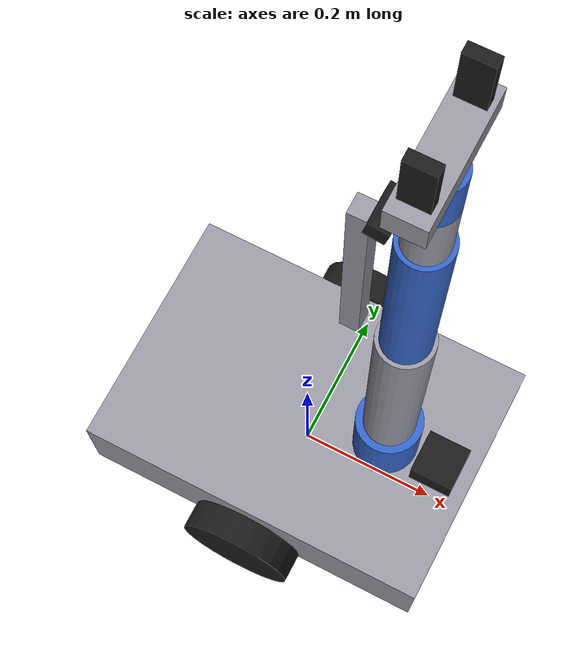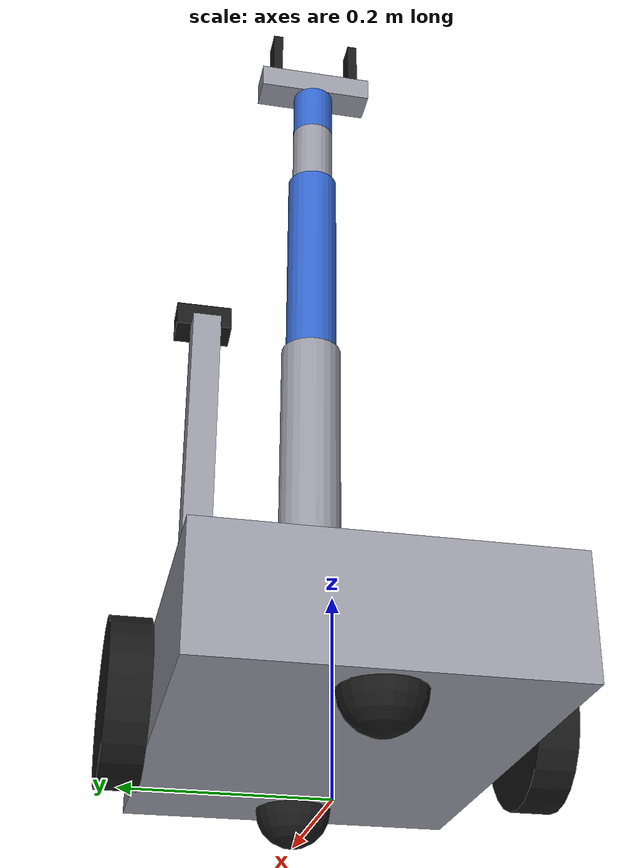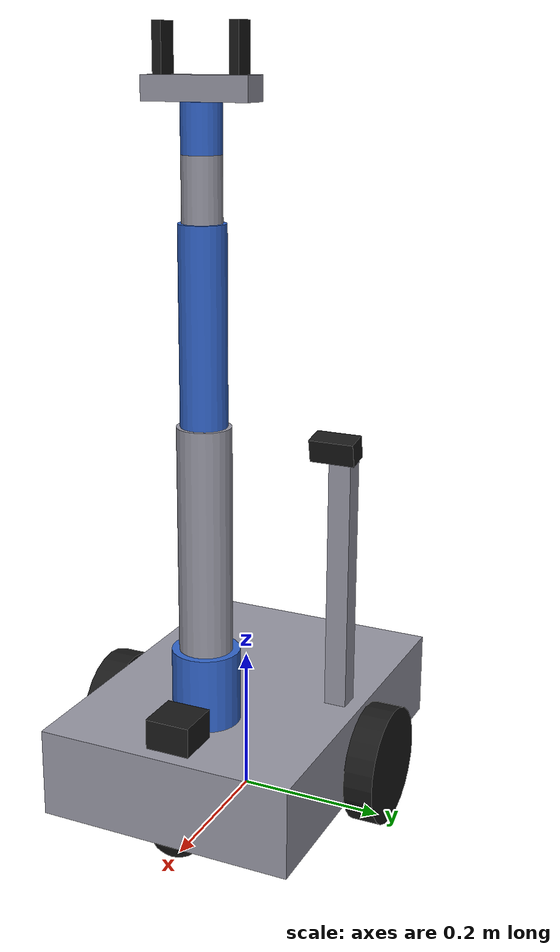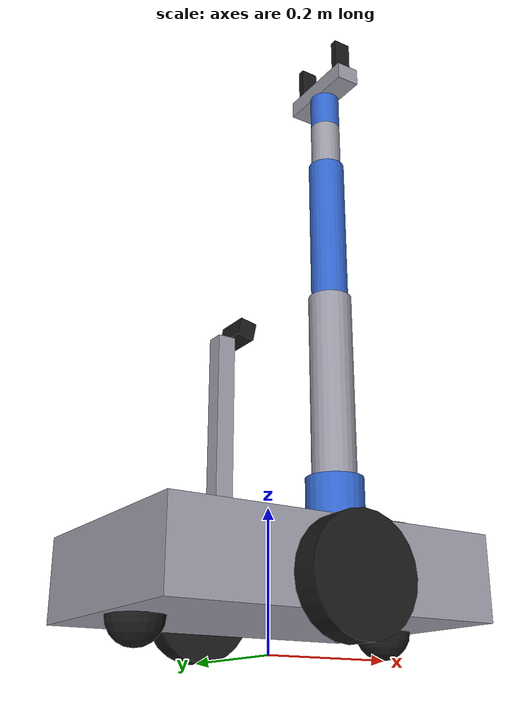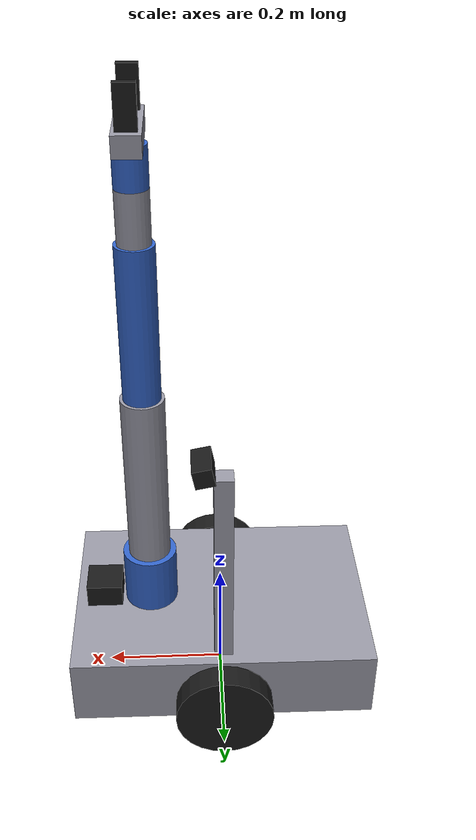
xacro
<?xml version="1.0"?>
<robot xmlns:xacro="http://www.ros.org/wiki/xacro" name="mm">
<material name="grey"><color rgba="0.6 0.6 0.65 1"/></material>
<material name="blue"><color rgba="0.2 0.4 0.8 1"/></material>
<material name="black"><color rgba="0.1 0.1 0.1 1"/></material>

<xacro:macro name="blk" params="name m x y z mat oz:=0">
<link name="${name}">
<visual><origin xyz="0 0 ${oz}"/><geometry><box size="${x} ${y} ${z}"/></geometry><material name="${mat}"/></visual>
<collision><origin xyz="0 0 ${oz}"/><geometry><box size="${x} ${y} ${z}"/></geometry></collision>
<inertial><origin xyz="0 0 ${oz}"/><mass value="${m}"/><inertia ixx="${m*(y*y+z*z)/12}" ixy="0" ixz="0" iyy="${m*(x*x+z*z)/12}" iyz="0" izz="${m*(x*x+y*y)/12}"/></inertial>
</link></xacro:macro>

<xacro:macro name="cyl" params="name m r h oz mat">
<link name="${name}">
<visual><origin xyz="0 0 ${oz}"/><geometry><cylinder radius="${r}" length="${h}"/></geometry><material name="${mat}"/></visual>
<collision><origin xyz="0 0 ${oz}"/><geometry><cylinder radius="${r}" length="${h}"/></geometry></collision>
<inertial><origin xyz="0 0 ${oz}"/><mass value="${m}"/><inertia ixx="${m*(3*r*r+h*h)/12}" ixy="0" ixz="0" iyy="${m*(3*r*r+h*h)/12}" iyz="0" izz="${m*r*r/2}"/></inertial>
</link></xacro:macro>

<xacro:macro name="fix" params="name parent child xyz rpy:='0 0 0'">
<joint name="${name}" type="fixed"><parent link="${parent}"/><child link="${child}"/><origin xyz="${xyz}" rpy="${rpy}"/></joint>
</xacro:macro>

<xacro:macro name="rev" params="name parent child xyz axis">
<joint name="${name}" type="revolute"><parent link="${parent}"/><child link="${child}"/><origin xyz="${xyz}"/><axis xyz="${axis}"/>
<limit lower="-2.6" upper="2.6" effort="100" velocity="2"/><dynamics damping="1.0" friction="0.1"/></joint>
</xacro:macro>

<xacro:macro name="wheel" params="side y">
<xacro:cyl name="${side}_wheel" m="0.5" r="0.08" h="0.04" oz="0" mat="black"/>
<joint name="${side}_wheel_joint" type="continuous"><parent link="base_link"/><child link="${side}_wheel"/><origin xyz="0 ${y} -0.02" rpy="-1.5708 0 0"/><axis xyz="0 0 1"/></joint>
<gazebo reference="${side}_wheel"><mu1>1.0</mu1><mu2>1.0</mu2></gazebo>
</xacro:macro>

<xacro:macro name="caster" params="name x">
<link name="${name}"><visual><geometry><sphere radius="0.04"/></geometry><material name="black"/></visual><collision><geometry><sphere radius="0.04"/></geometry></collision>
<inertial><mass value="0.1"/><inertia ixx="6.4e-5" ixy="0" ixz="0" iyy="6.4e-5" iyz="0" izz="6.4e-5"/></inertial></link>
<xacro:fix name="${name}_joint" parent="base_link" child="${name}" xyz="${x} 0 -0.06"/>
<gazebo reference="${name}"><mu1>0.0</mu1><mu2>0.0</mu2></gazebo>
</xacro:macro>

<xacro:macro name="jif" params="n"><joint name="${n}"><command_interface name="position"/><state_interface name="position"/><state_interface name="velocity"/></joint></xacro:macro>

<!-- base -->
<link name="base_footprint"/>
<xacro:blk name="base_link" m="5" x="0.5" y="0.35" z="0.12" mat="grey"/>
<xacro:fix name="base_joint" parent="base_footprint" child="base_link" xyz="0 0 0.10"/>
<xacro:wheel side="left" y="0.2"/><xacro:wheel side="right" y="-0.2"/>
<xacro:caster name="caster_front" x="0.2"/><xacro:caster name="caster_rear" x="-0.2"/>

<!-- sensors -->
<xacro:blk name="lidar_link" m="0.1" x="0.06" y="0.06" z="0.04" mat="black"/>
<xacro:fix name="lidar_joint" parent="base_link" child="lidar_link" xyz="0.2 0 0.08"/>
<xacro:blk name="mast" m="0.3" x="0.03" y="0.03" z="0.35" mat="grey"/>
<xacro:fix name="mast_joint" parent="base_link" child="mast" xyz="0 0.14 0.235"/>
<xacro:blk name="camera_link" m="0.05" x="0.03" y="0.06" z="0.03" mat="black"/>
<xacro:fix name="camera_joint" parent="mast" child="camera_link" xyz="0.03 0 0.19" rpy="0 0.2 0"/>

<!-- arm -->
<xacro:cyl name="arm_1" m="1.0" r="0.045" h="0.10" oz="0.05" mat="blue"/>
<xacro:cyl name="arm_2" m="1.0" r="0.035" h="0.30" oz="0.15" mat="grey"/>
<xacro:cyl name="arm_3" m="0.8" r="0.03" h="0.25" oz="0.125" mat="blue"/>
<xacro:cyl name="arm_4" m="0.3" r="0.025" h="0.08" oz="0.04" mat="grey"/>
<xacro:cyl name="arm_5" m="0.2" r="0.025" h="0.06" oz="0.03" mat="blue"/>
<xacro:blk name="gripper_base" m="0.3" x="0.04" y="0.14" z="0.03" mat="grey" oz="0.015"/>
<xacro:rev name="joint1" parent="base_link" child="arm_1" xyz="0.12 0 0.06" axis="0 0 1"/>
<xacro:rev name="joint2" parent="arm_1" child="arm_2" xyz="0 0 0.10" axis="0 1 0"/>
<xacro:rev name="joint3" parent="arm_2" child="arm_3" xyz="0 0 0.30" axis="0 1 0"/>
<xacro:rev name="joint4" parent="arm_3" child="arm_4" xyz="0 0 0.25" axis="0 0 1"/>
<xacro:rev name="joint5" parent="arm_4" child="arm_5" xyz="0 0 0.08" axis="0 1 0"/>
<xacro:rev name="joint6" parent="arm_5" child="gripper_base" xyz="0 0 0.06" axis="0 0 1"/>

<!-- gripper -->
<xacro:blk name="finger_left" m="0.05" x="0.03" y="0.012" z="0.06" mat="black" oz="0.03"/>
<xacro:blk name="finger_right" m="0.05" x="0.03" y="0.012" z="0.06" mat="black" oz="0.03"/>
<joint name="finger_left_joint" type="prismatic"><parent link="gripper_base"/><child link="finger_left"/><origin xyz="0 0.05 0.03"/><axis xyz="0 -1 0"/>
<limit lower="0" upper="0.03" effort="20" velocity="0.2"/><dynamics damping="1.0" friction="0.0"/></joint>
<joint name="finger_right_joint" type="prismatic"><parent link="gripper_base"/><child link="finger_right"/><origin xyz="0 -0.05 0.03"/><axis xyz="0 1 0"/>
<limit lower="0" upper="0.03" effort="20" velocity="0.2"/><dynamics damping="1.0" friction="0.0"/></joint>
<gazebo reference="finger_left"><mu1>10.0</mu1><mu2>10.0</mu2></gazebo>
<gazebo reference="finger_right"><mu1>10.0</mu1><mu2>10.0</mu2></gazebo>

<ros2_control name="GazeboSystem" type="system">
<hardware><plugin>gz_ros2_control/GazeboSimSystem</plugin></hardware>
<xacro:jif n="joint1"/><xacro:jif n="joint2"/><xacro:jif n="joint3"/><xacro:jif n="joint4"/><xacro:jif n="joint5"/><xacro:jif n="joint6"/>
<xacro:jif n="finger_left_joint"/><xacro:jif n="finger_right_joint"/>
</ros2_control>

<gazebo>
<plugin filename="gz_ros2_control-system" name="gz_ros2_control::GazeboSimROS2ControlPlugin">
<parameters>$(find mm_robot)/config/controllers.yaml</parameters>
<robot_param>robot_description</robot_param><robot_param_node>robot_state_publisher</robot_param_node>
</plugin>
<plugin filename="gz-sim-diff-drive-system" name="gz::sim::systems::DiffDrive">
<left_joint>left_wheel_joint</left_joint><right_joint>right_wheel_joint</right_joint>
<wheel_separation>0.4</wheel_separation><wheel_radius>0.08</wheel_radius>
<topic>cmd_vel</topic><odom_topic>odom</odom_topic><tf_topic>/tf</tf_topic>
<frame_id>odom</frame_id><child_frame_id>base_footprint</child_frame_id><odom_publish_frequency>30</odom_publish_frequency>
</plugin>
<plugin filename="gz-sim-joint-state-publisher-system" name="gz::sim::systems::JointStatePublisher">
<topic>wheel_states</topic><joint_name>left_wheel_joint</joint_name><joint_name>right_wheel_joint</joint_name>
</plugin>
</gazebo>

<gazebo reference="lidar_link"><sensor name="lidar" type="gpu_lidar"><topic>scan</topic><update_rate>10</update_rate><always_on>true</always_on><gz_frame_id>lidar_link</gz_frame_id>
<lidar><scan><horizontal><samples>360</samples><min_angle>-3.14159</min_angle><max_angle>3.14159</max_angle></horizontal></scan><range><min>0.15</min><max>8.0</max></range></lidar></sensor></gazebo>
<gazebo reference="camera_link"><sensor name="cam" type="camera"><topic>camera/image_raw</topic><update_rate>10</update_rate><always_on>true</always_on><gz_frame_id>camera_link</gz_frame_id>
<camera><horizontal_fov>1.047</horizontal_fov><image><width>320</width><height>240</height><format>R8G8B8</format></image><clip><near>0.05</near><far>10</far></clip></camera></sensor></gazebo>
</robot>
